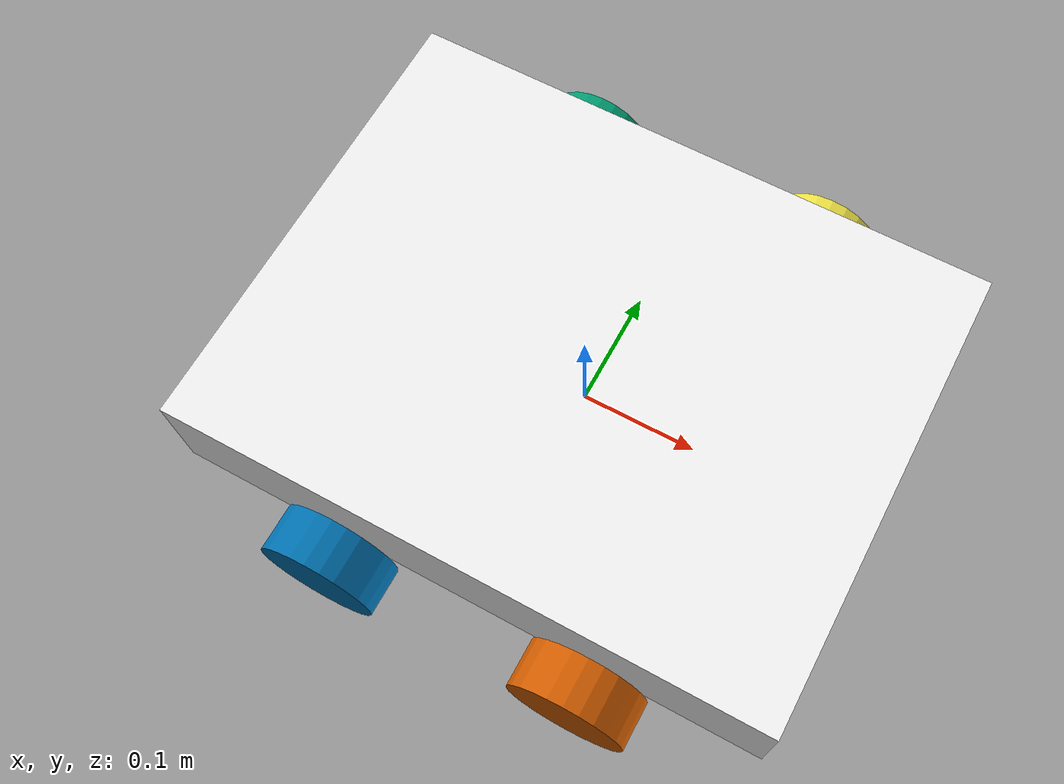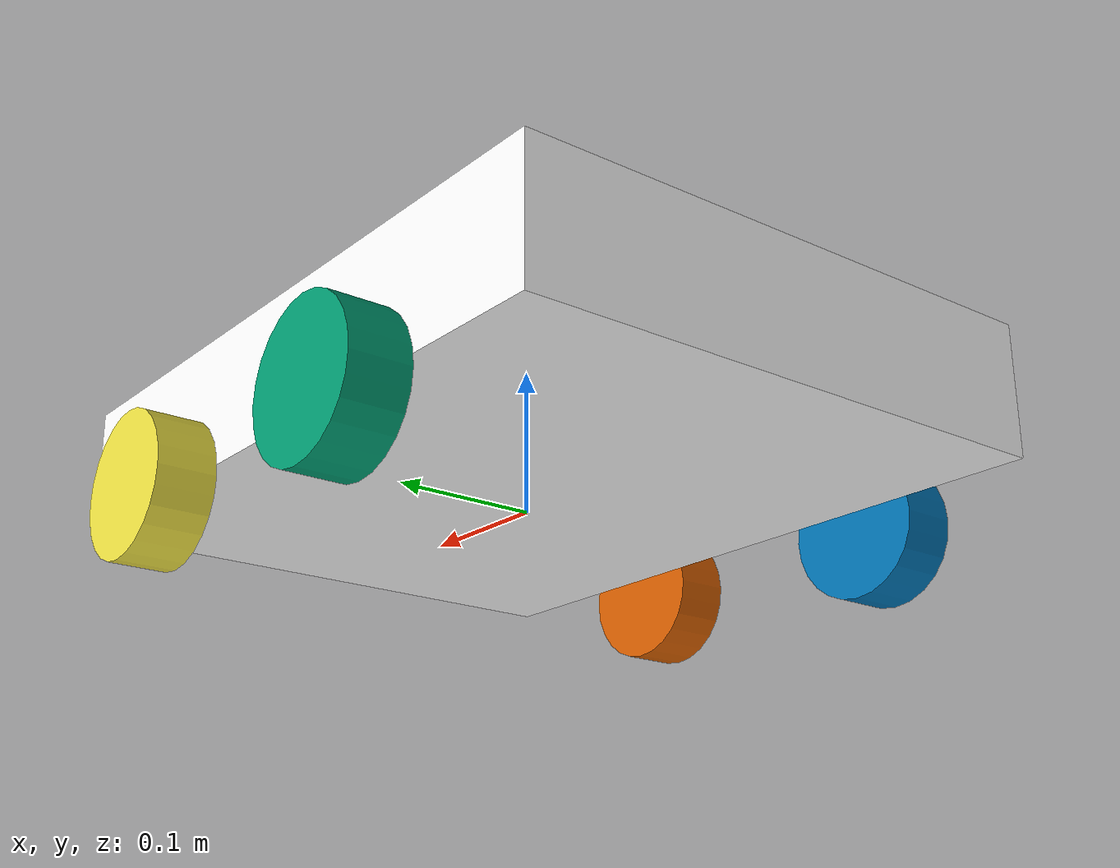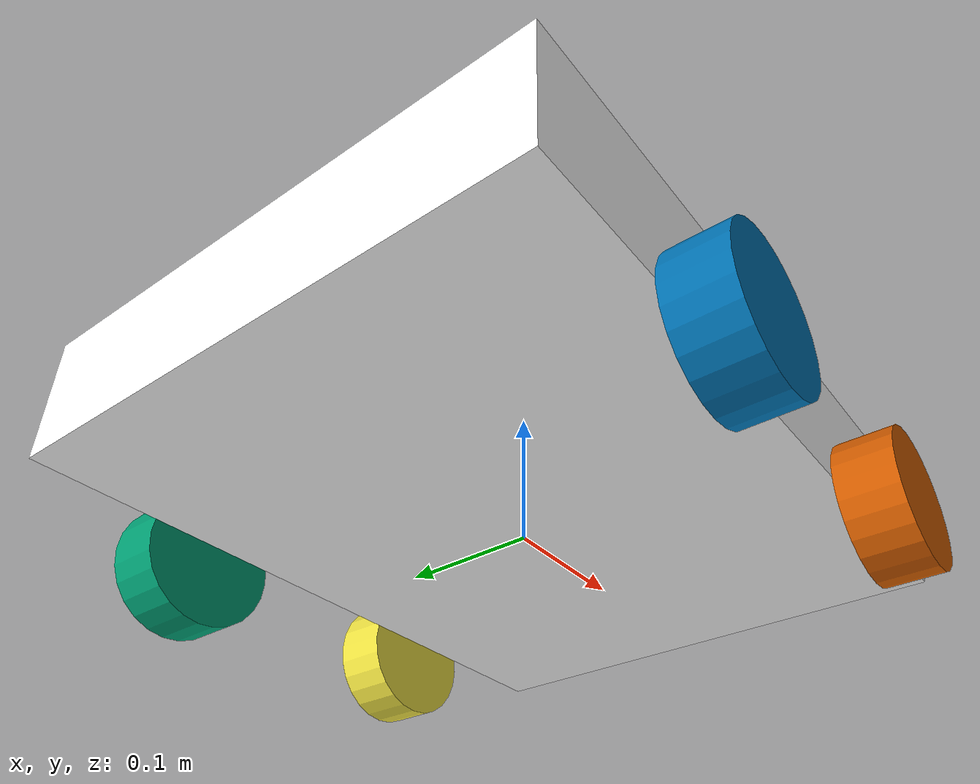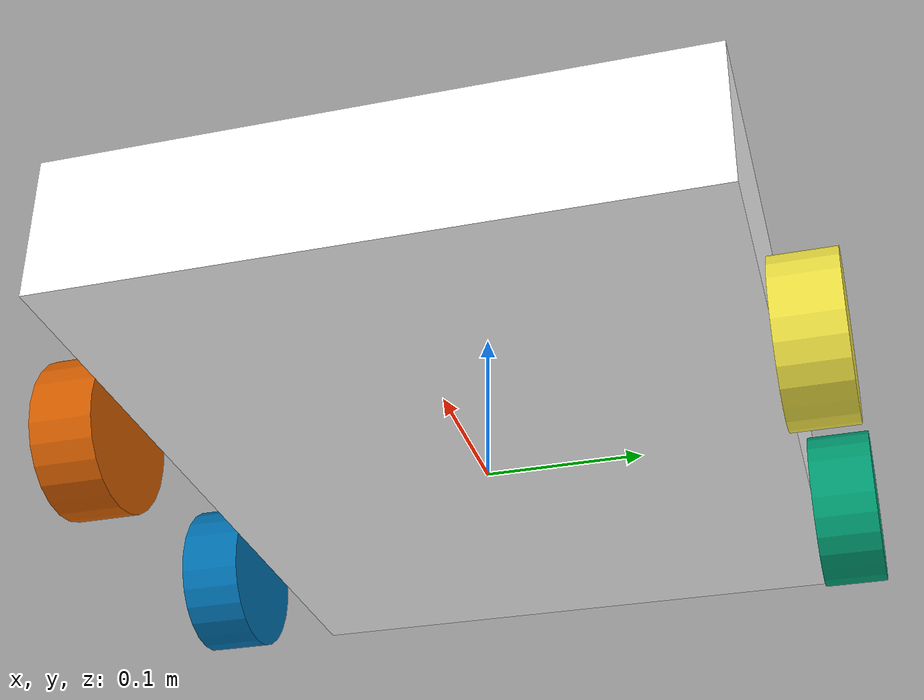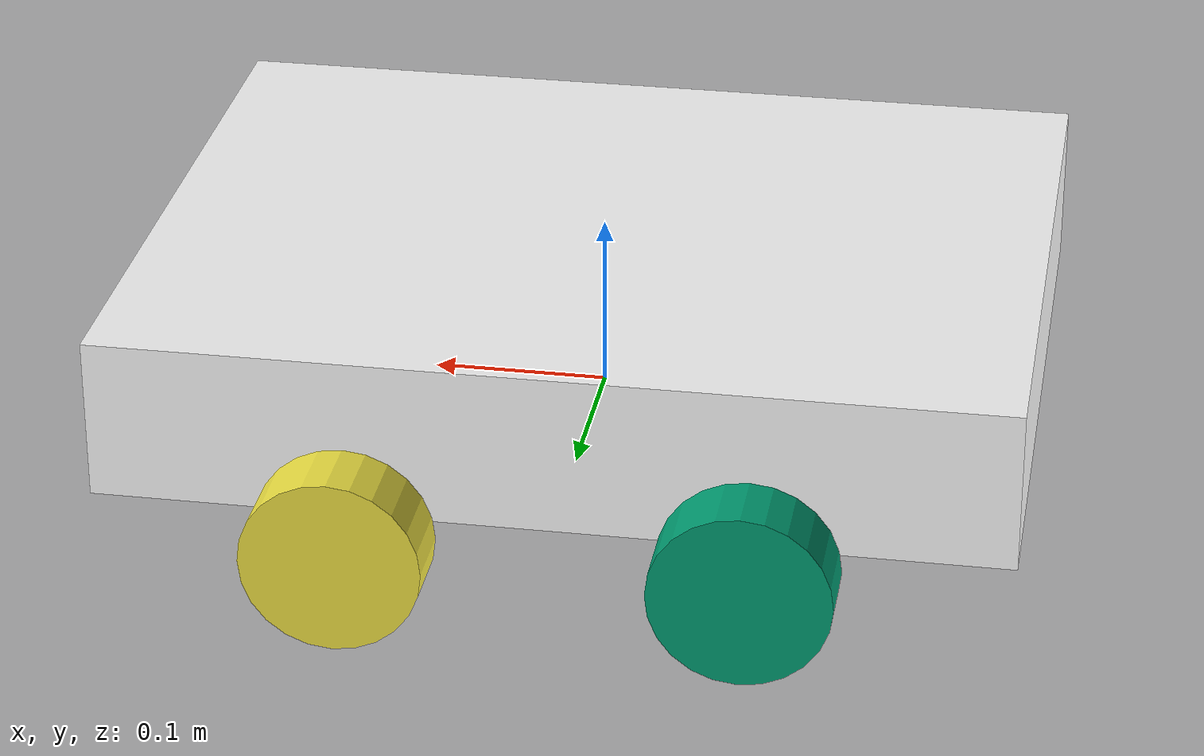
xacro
<?xml version="1.0"?>

<robot xmlns:xacro="http://www.ros.org/wiki/xacro" >
    <xacro:include filename="interial_macros.xacro" />
    <material name="white">
        <color rgba="1 1 1 1" />
    </material>
    <material name="orange">
        <color rgba="1 0.3 0.1 1" />
    </material>
    <material name="blue">
        <color rgba="0.2 0.3 1 1" />
    </material>
    <material name="black">
        <color rgba="0 0 0 1" />
    </material>

    <!--Base link-->
    <link name="base_link">

    </link>

    <!--Chasis Link-->

    <joint name="chassis_joint" type="fixed">
        <parent link="base_link"/>
        <child link="chassis"/>
        <origin xyz="-0.25 0.0 0.0"/>

    </joint>

    <link name="chassis">
        <visual>
            <origin xyz="0.25 0.0 0.055"/>
            <geometry>
                <box size="0.505 0.392 0.091"/>
            </geometry>
            <material name="white"/>
        </visual>
        <collision>
            <origin xyz="0.25 0.0 0.055"/>
            <geometry>
                <box size="0.505 0.392 0.091"/>
            </geometry>
        </collision>
        <xacro:inertial_box mass="0.5" x="0.505" y="0.392" z="0.091">
            <origin xyz="0.25 0.0 0.055"/>
        </xacro:inertial_box>
    </link>

    <!--LEFT WHEEL BACK LINK-->

    <joint name="left_wheel_back_joint" type="continuous">
        <parent link="base_link"/>
        <child link="left_wheel_back"/>
        <origin xyz="-0.11 0.218 0" rpy="-${pi/2} 0.0 0.0"/>
        <axis xyz="0.0 0.0 1"/>
    </joint>

    <link name="left_wheel_back">
        <visual>
            <geometry>
                <cylinder radius="0.05" length="0.04"/>
                <material name="blue"/>
            </geometry>
        </visual>
        <collision>
            <geometry>
                <cylinder radius="0.05" length="0.04"/>
            </geometry>
        </collision>
        <xacro:inertial_cylinder mass="0.1" length="0.04" radius="0.05">
            <origin xyz="-0 0 0" rpy="0 0.0 0.0"/>
        </xacro:inertial_cylinder>

    </link>

    <!--LEFT WHEEL FRONT LINK-->

    <joint name="left_wheel_front_joint" type="continuous">
        <parent link="base_link"/>
        <child link="left_wheel_front"/>
        <origin xyz="0.11 0.218 0" rpy="-${pi/2} 0.0 0.0"/>
        <axis xyz="0.0 0.0 1"/>
    </joint>

    <link name="left_wheel_front">
        <visual>
            <geometry>
                <cylinder radius="0.05" length="0.04"/>
                <material name="orange"/>
            </geometry>
        </visual>
        <collision>
            <geometry>
                <cylinder radius="0.05" length="0.04"/>
            </geometry>
        </collision>
        <xacro:inertial_cylinder mass="0.1" length="0.04" radius="0.05">
            <origin xyz="-0 0 0" rpy="0 0.0 0.0"/>
        </xacro:inertial_cylinder>

    </link>

    <!--RIGHT WHEEL BACK LINK-->

    <joint name="right_wheel_back_joint" type="continuous">
        <parent link="base_link"/>
        <child link="right_wheel_back"/>
        <origin xyz="-0.11 -0.218 0" rpy="${pi/2} 0.0 0.0"/>
        <axis xyz="0.0 0.0 1"/>
    </joint>

    <link name="right_wheel_back">
        <visual>
            <geometry>
                <cylinder radius="0.05" length="0.04"/>
                <material name="orange"/>
            </geometry>
        </visual>
        <collision>
            <geometry>
                <cylinder radius="0.05" length="0.04"/>
            </geometry>
        </collision>
        <xacro:inertial_cylinder mass="0.1" length="0.04" radius="0.05">
            <origin xyz="-0 0 0" rpy="0 0.0 0.0"/>
        </xacro:inertial_cylinder>
    </link>

    <!--RIGHT WHEEL FRONT LINK-->

    <joint name="right_wheel_front_joint" type="continuous">
        <parent link="base_link"/>
        <child link="right_wheel_front"/>
        <origin xyz="0.11 -0.218 0" rpy="${pi/2} 0.0 0.0"/>
        <axis xyz="0.0 0.0 1"/>
    </joint>

    <link name="right_wheel_front">
        <visual>
            <geometry>
                <cylinder radius="0.05" length="0.04"/>
                <material name="orange"/>
            </geometry>
        </visual>
        <collision>
            <geometry>
                <cylinder radius="0.05" length="0.04"/>
                <material name="orange"/>
            </geometry>
        </collision>
        <xacro:inertial_cylinder mass="0.1" length="0.04" radius="0.05">
            <origin xyz="-0 0 0" rpy="0 0.0 0.0"/>
        </xacro:inertial_cylinder>
    </link>

</robot>
